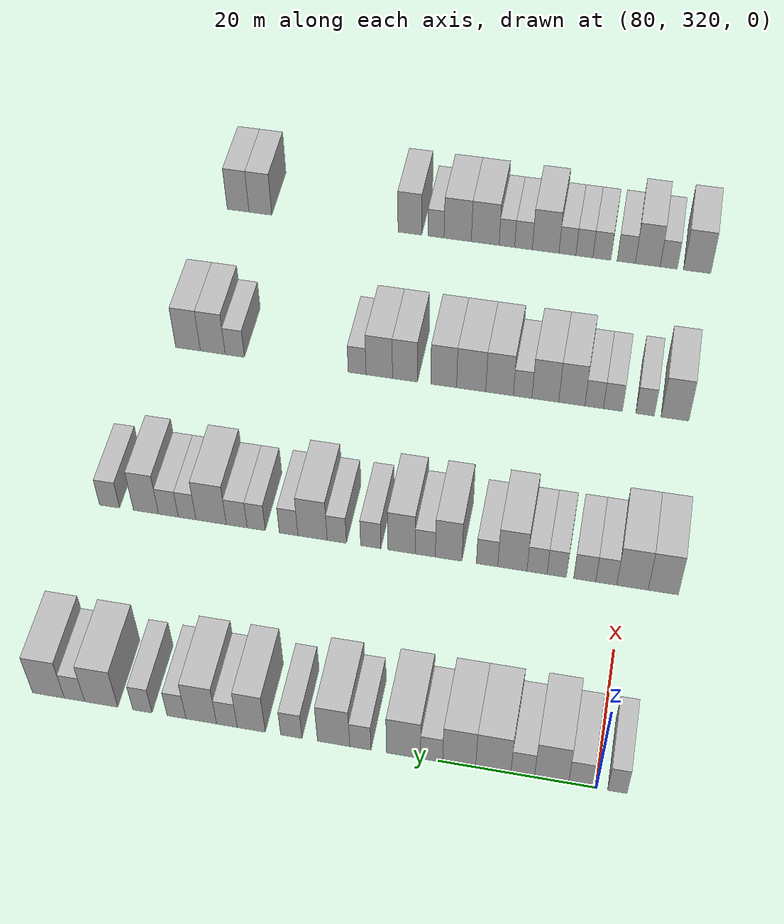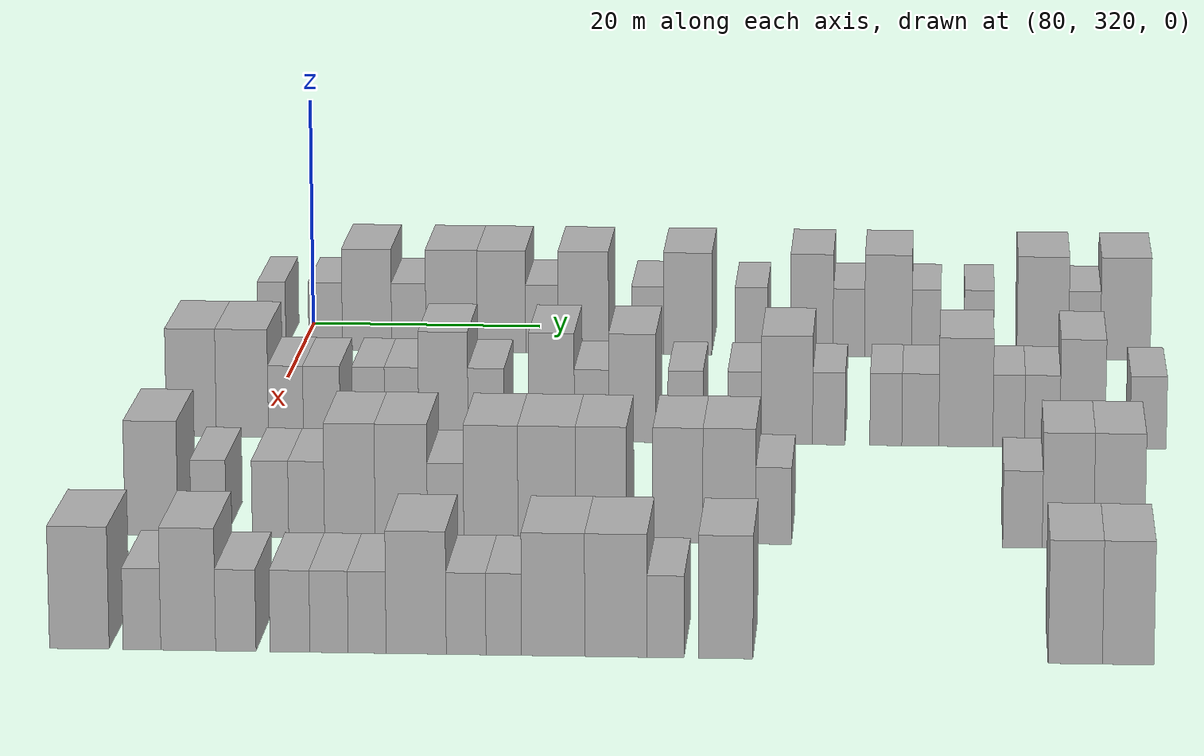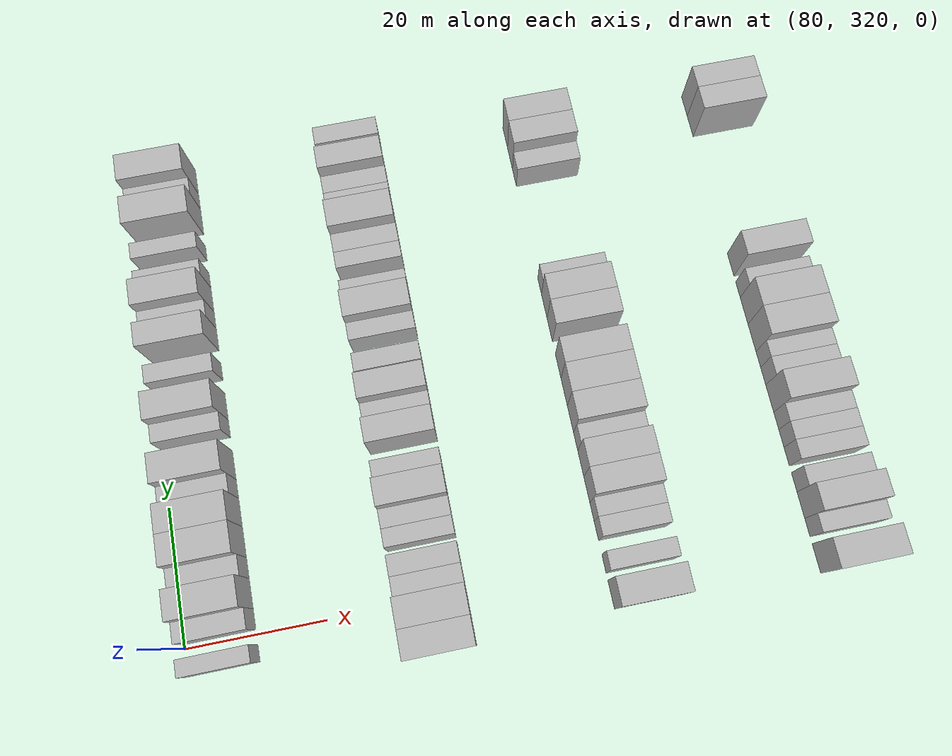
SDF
<sdf version="1.6">
 <world name="default">
  <model name="building_657">
   <static>1</static>
   <pose>85.0000 317.4570 0 0.000000 0.000000 0.000000</pose>
   <link name="link">
    <pose>0 0 3.00 0 0 0</pose>
    <collision name="collision"><geometry><box><size>10.0000 2.4026 6.0000</size></box></geometry></collision>
    <visual name="visual">
     <cast_shadows>0</cast_shadows>
     <geometry><box><size>10.0000 2.4026 6.0000</size></box></geometry>
     <material>
      <script>
       <uri>model://HANNAS_wall/materials/scripts</uri>
       <uri>model://HANNAS_wall/materials/textures</uri>
       <name>vrc/HANNAS_wall</name>
      </script>
     </material>
    </visual>
   </link>
  </model>
  <model name="building_658">
   <static>1</static>
   <pose>85.0000 322.1167 0 0.000000 0.000000 0.000000</pose>
   <link name="link">
    <pose>0 0 3.00 0 0 0</pose>
    <collision name="collision"><geometry><box><size>10.0000 2.9169 6.0000</size></box></geometry></collision>
    <visual name="visual">
     <cast_shadows>0</cast_shadows>
     <geometry><box><size>10.0000 2.9169 6.0000</size></box></geometry>
     <material>
      <script>
       <uri>model://HANNAS_wall/materials/scripts</uri>
       <uri>model://HANNAS_wall/materials/textures</uri>
       <name>vrc/HANNAS_wall</name>
      </script>
     </material>
    </visual>
   </link>
  </model>
  <model name="building_659">
   <static>1</static>
   <pose>85.0000 325.7129 0 0.000000 0.000000 0.000000</pose>
   <link name="link">
    <pose>0 0 4.50 0 0 0</pose>
    <collision name="collision"><geometry><box><size>10.0000 4.2755 9.0000</size></box></geometry></collision>
    <visual name="visual">
     <cast_shadows>0</cast_shadows>
     <geometry><box><size>10.0000 4.2755 9.0000</size></box></geometry>
     <material>
      <script>
       <uri>model://HANNAS_wall/materials/scripts</uri>
       <uri>model://HANNAS_wall/materials/textures</uri>
       <name>vrc/HANNAS_wall</name>
      </script>
     </material>
    </visual>
   </link>
  </model>
  <model name="building_660">
   <static>1</static>
   <pose>85.0000 329.3362 0 0.000000 0.000000 0.000000</pose>
   <link name="link">
    <pose>0 0 3.00 0 0 0</pose>
    <collision name="collision"><geometry><box><size>10.0000 2.9711 6.0000</size></box></geometry></collision>
    <visual name="visual">
     <cast_shadows>0</cast_shadows>
     <geometry><box><size>10.0000 2.9711 6.0000</size></box></geometry>
     <material>
      <script>
       <uri>model://HANNAS_wall/materials/scripts</uri>
       <uri>model://HANNAS_wall/materials/textures</uri>
       <name>vrc/HANNAS_wall</name>
      </script>
     </material>
    </visual>
   </link>
  </model>
  <model name="building_661">
   <static>1</static>
   <pose>85.0000 333.0468 0 0.000000 0.000000 0.000000</pose>
   <link name="link">
    <pose>0 0 4.50 0 0 0</pose>
    <collision name="collision"><geometry><box><size>10.0000 4.4502 9.0000</size></box></geometry></collision>
    <visual name="visual">
     <cast_shadows>0</cast_shadows>
     <geometry><box><size>10.0000 4.4502 9.0000</size></box></geometry>
     <material>
      <script>
       <uri>model://HANNAS_wall/materials/scripts</uri>
       <uri>model://HANNAS_wall/materials/textures</uri>
       <name>vrc/HANNAS_wall</name>
      </script>
     </material>
    </visual>
   </link>
  </model>
  <model name="building_662">
   <static>1</static>
   <pose>85.0000 337.3707 0 0.000000 0.000000 0.000000</pose>
   <link name="link">
    <pose>0 0 4.50 0 0 0</pose>
    <collision name="collision"><geometry><box><size>10.0000 4.1976 9.0000</size></box></geometry></collision>
    <visual name="visual">
     <cast_shadows>0</cast_shadows>
     <geometry><box><size>10.0000 4.1976 9.0000</size></box></geometry>
     <material>
      <script>
       <uri>model://HANNAS_wall/materials/scripts</uri>
       <uri>model://HANNAS_wall/materials/textures</uri>
       <name>vrc/HANNAS_wall</name>
      </script>
     </material>
    </visual>
   </link>
  </model>
  <model name="building_663">
   <static>1</static>
   <pose>85.0000 340.8778 0 0.000000 0.000000 0.000000</pose>
   <link name="link">
    <pose>0 0 3.00 0 0 0</pose>
    <collision name="collision"><geometry><box><size>10.0000 2.8165 6.0000</size></box></geometry></collision>
    <visual name="visual">
     <cast_shadows>0</cast_shadows>
     <geometry><box><size>10.0000 2.8165 6.0000</size></box></geometry>
     <material>
      <script>
       <uri>model://HANNAS_wall/materials/scripts</uri>
       <uri>model://HANNAS_wall/materials/textures</uri>
       <name>vrc/HANNAS_wall</name>
      </script>
     </material>
    </visual>
   </link>
  </model>
  <model name="building_664">
   <static>1</static>
   <pose>85.0000 344.4559 0 0.000000 0.000000 0.000000</pose>
   <link name="link">
    <pose>0 0 4.50 0 0 0</pose>
    <collision name="collision"><geometry><box><size>10.0000 4.3398 9.0000</size></box></geometry></collision>
    <visual name="visual">
     <cast_shadows>0</cast_shadows>
     <geometry><box><size>10.0000 4.3398 9.0000</size></box></geometry>
     <material>
      <script>
       <uri>model://HANNAS_wall/materials/scripts</uri>
       <uri>model://HANNAS_wall/materials/textures</uri>
       <name>vrc/HANNAS_wall</name>
      </script>
     </material>
    </visual>
   </link>
  </model>
  <model name="building_665">
   <static>1</static>
   <pose>85.0000 349.9977 0 0.000000 0.000000 0.000000</pose>
   <link name="link">
    <pose>0 0 3.00 0 0 0</pose>
    <collision name="collision"><geometry><box><size>10.0000 2.7438 6.0000</size></box></geometry></collision>
    <visual name="visual">
     <cast_shadows>0</cast_shadows>
     <geometry><box><size>10.0000 2.7438 6.0000</size></box></geometry>
     <material>
      <script>
       <uri>model://HANNAS_wall/materials/scripts</uri>
       <uri>model://HANNAS_wall/materials/textures</uri>
       <name>vrc/HANNAS_wall</name>
      </script>
     </material>
    </visual>
   </link>
  </model>
  <model name="building_666">
   <static>1</static>
   <pose>85.0000 353.4568 0 0.000000 0.000000 0.000000</pose>
   <link name="link">
    <pose>0 0 4.50 0 0 0</pose>
    <collision name="collision"><geometry><box><size>10.0000 4.1745 9.0000</size></box></geometry></collision>
    <visual name="visual">
     <cast_shadows>0</cast_shadows>
     <geometry><box><size>10.0000 4.1745 9.0000</size></box></geometry>
     <material>
      <script>
       <uri>model://HANNAS_wall/materials/scripts</uri>
       <uri>model://HANNAS_wall/materials/textures</uri>
       <name>vrc/HANNAS_wall</name>
      </script>
     </material>
    </visual>
   </link>
  </model>
  <model name="building_667">
   <static>1</static>
   <pose>85.0000 358.9372 0 0.000000 0.000000 0.000000</pose>
   <link name="link">
    <pose>0 0 3.00 0 0 0</pose>
    <collision name="collision"><geometry><box><size>10.0000 2.7862 6.0000</size></box></geometry></collision>
    <visual name="visual">
     <cast_shadows>0</cast_shadows>
     <geometry><box><size>10.0000 2.7862 6.0000</size></box></geometry>
     <material>
      <script>
       <uri>model://HANNAS_wall/materials/scripts</uri>
       <uri>model://HANNAS_wall/materials/textures</uri>
       <name>vrc/HANNAS_wall</name>
      </script>
     </material>
    </visual>
   </link>
  </model>
  <model name="building_668">
   <static>1</static>
   <pose>85.0000 364.1641 0 0.000000 0.000000 0.000000</pose>
   <link name="link">
    <pose>0 0 4.50 0 0 0</pose>
    <collision name="collision"><geometry><box><size>10.0000 3.6677 9.0000</size></box></geometry></collision>
    <visual name="visual">
     <cast_shadows>0</cast_shadows>
     <geometry><box><size>10.0000 3.6677 9.0000</size></box></geometry>
     <material>
      <script>
       <uri>model://HANNAS_wall/materials/scripts</uri>
       <uri>model://HANNAS_wall/materials/textures</uri>
       <name>vrc/HANNAS_wall</name>
      </script>
     </material>
    </visual>
   </link>
  </model>
  <model name="building_669">
   <static>1</static>
   <pose>85.0000 367.3569 0 0.000000 0.000000 0.000000</pose>
   <link name="link">
    <pose>0 0 3.00 0 0 0</pose>
    <collision name="collision"><geometry><box><size>10.0000 2.7177 6.0000</size></box></geometry></collision>
    <visual name="visual">
     <cast_shadows>0</cast_shadows>
     <geometry><box><size>10.0000 2.7177 6.0000</size></box></geometry>
     <material>
      <script>
       <uri>model://HANNAS_wall/materials/scripts</uri>
       <uri>model://HANNAS_wall/materials/textures</uri>
       <name>vrc/HANNAS_wall</name>
      </script>
     </material>
    </visual>
   </link>
  </model>
  <model name="building_670">
   <static>1</static>
   <pose>85.0000 370.7397 0 0.000000 0.000000 0.000000</pose>
   <link name="link">
    <pose>0 0 4.50 0 0 0</pose>
    <collision name="collision"><geometry><box><size>10.0000 4.0479 9.0000</size></box></geometry></collision>
    <visual name="visual">
     <cast_shadows>0</cast_shadows>
     <geometry><box><size>10.0000 4.0479 9.0000</size></box></geometry>
     <material>
      <script>
       <uri>model://HANNAS_wall/materials/scripts</uri>
       <uri>model://HANNAS_wall/materials/textures</uri>
       <name>vrc/HANNAS_wall</name>
      </script>
     </material>
    </visual>
   </link>
  </model>
  <model name="building_671">
   <static>1</static>
   <pose>85.0000 374.0092 0 0.000000 0.000000 0.000000</pose>
   <link name="link">
    <pose>0 0 3.00 0 0 0</pose>
    <collision name="collision"><geometry><box><size>10.0000 2.4912 6.0000</size></box></geometry></collision>
    <visual name="visual">
     <cast_shadows>0</cast_shadows>
     <geometry><box><size>10.0000 2.4912 6.0000</size></box></geometry>
     <material>
      <script>
       <uri>model://HANNAS_wall/materials/scripts</uri>
       <uri>model://HANNAS_wall/materials/textures</uri>
       <name>vrc/HANNAS_wall</name>
      </script>
     </material>
    </visual>
   </link>
  </model>
  <model name="building_672">
   <static>1</static>
   <pose>85.0000 378.5277 0 0.000000 0.000000 0.000000</pose>
   <link name="link">
    <pose>0 0 3.00 0 0 0</pose>
    <collision name="collision"><geometry><box><size>10.0000 2.5457 6.0000</size></box></geometry></collision>
    <visual name="visual">
     <cast_shadows>0</cast_shadows>
     <geometry><box><size>10.0000 2.5457 6.0000</size></box></geometry>
     <material>
      <script>
       <uri>model://HANNAS_wall/materials/scripts</uri>
       <uri>model://HANNAS_wall/materials/textures</uri>
       <name>vrc/HANNAS_wall</name>
      </script>
     </material>
    </visual>
   </link>
  </model>
  <model name="building_673">
   <static>1</static>
   <pose>85.0000 384.0143 0 0.000000 0.000000 0.000000</pose>
   <link name="link">
    <pose>0 0 4.50 0 0 0</pose>
    <collision name="collision"><geometry><box><size>10.0000 4.4275 9.0000</size></box></geometry></collision>
    <visual name="visual">
     <cast_shadows>0</cast_shadows>
     <geometry><box><size>10.0000 4.4275 9.0000</size></box></geometry>
     <material>
      <script>
       <uri>model://HANNAS_wall/materials/scripts</uri>
       <uri>model://HANNAS_wall/materials/textures</uri>
       <name>vrc/HANNAS_wall</name>
      </script>
     </material>
    </visual>
   </link>
  </model>
  <model name="building_674">
   <static>1</static>
   <pose>85.0000 387.5916 0 0.000000 0.000000 0.000000</pose>
   <link name="link">
    <pose>0 0 3.00 0 0 0</pose>
    <collision name="collision"><geometry><box><size>10.0000 2.7272 6.0000</size></box></geometry></collision>
    <visual name="visual">
     <cast_shadows>0</cast_shadows>
     <geometry><box><size>10.0000 2.7272 6.0000</size></box></geometry>
     <material>
      <script>
       <uri>model://HANNAS_wall/materials/scripts</uri>
       <uri>model://HANNAS_wall/materials/textures</uri>
       <name>vrc/HANNAS_wall</name>
      </script>
     </material>
    </visual>
   </link>
  </model>
  <model name="building_675">
   <static>1</static>
   <pose>85.0000 391.0975 0 0.000000 0.000000 0.000000</pose>
   <link name="link">
    <pose>0 0 4.50 0 0 0</pose>
    <collision name="collision"><geometry><box><size>10.0000 4.2845 9.0000</size></box></geometry></collision>
    <visual name="visual">
     <cast_shadows>0</cast_shadows>
     <geometry><box><size>10.0000 4.2845 9.0000</size></box></geometry>
     <material>
      <script>
       <uri>model://HANNAS_wall/materials/scripts</uri>
       <uri>model://HANNAS_wall/materials/textures</uri>
       <name>vrc/HANNAS_wall</name>
      </script>
     </material>
    </visual>
   </link>
  </model>
  <model name="building_880">
   <static>1</static>
   <pose>115.0000 314.4201 0 0.000000 0.000000 0.000000</pose>
   <link name="link">
    <pose>0 0 4.50 0 0 0</pose>
    <collision name="collision"><geometry><box><size>10.0000 4.0799 9.0000</size></box></geometry></collision>
    <visual name="visual">
     <cast_shadows>0</cast_shadows>
     <geometry><box><size>10.0000 4.0799 9.0000</size></box></geometry>
     <material>
      <script>
       <uri>model://HANNAS_wall/materials/scripts</uri>
       <uri>model://HANNAS_wall/materials/textures</uri>
       <name>vrc/HANNAS_wall</name>
      </script>
     </material>
    </visual>
   </link>
  </model>
  <model name="building_881">
   <static>1</static>
   <pose>115.0000 318.5899 0 0.000000 0.000000 0.000000</pose>
   <link name="link">
    <pose>0 0 4.50 0 0 0</pose>
    <collision name="collision"><geometry><box><size>10.0000 4.2597 9.0000</size></box></geometry></collision>
    <visual name="visual">
     <cast_shadows>0</cast_shadows>
     <geometry><box><size>10.0000 4.2597 9.0000</size></box></geometry>
     <material>
      <script>
       <uri>model://HANNAS_wall/materials/scripts</uri>
       <uri>model://HANNAS_wall/materials/textures</uri>
       <name>vrc/HANNAS_wall</name>
      </script>
     </material>
    </visual>
   </link>
  </model>
  <model name="building_882">
   <static>1</static>
   <pose>115.0000 322.1498 0 0.000000 0.000000 0.000000</pose>
   <link name="link">
    <pose>0 0 3.00 0 0 0</pose>
    <collision name="collision"><geometry><box><size>10.0000 2.8601 6.0000</size></box></geometry></collision>
    <visual name="visual">
     <cast_shadows>0</cast_shadows>
     <geometry><box><size>10.0000 2.8601 6.0000</size></box></geometry>
     <material>
      <script>
       <uri>model://HANNAS_wall/materials/scripts</uri>
       <uri>model://HANNAS_wall/materials/textures</uri>
       <name>vrc/HANNAS_wall</name>
      </script>
     </material>
    </visual>
   </link>
  </model>
  <model name="building_883">
   <static>1</static>
   <pose>115.0000 325.0797 0 0.000000 0.000000 0.000000</pose>
   <link name="link">
    <pose>0 0 3.00 0 0 0</pose>
    <collision name="collision"><geometry><box><size>10.0000 2.9998 6.0000</size></box></geometry></collision>
    <visual name="visual">
     <cast_shadows>0</cast_shadows>
     <geometry><box><size>10.0000 2.9998 6.0000</size></box></geometry>
     <material>
      <script>
       <uri>model://HANNAS_wall/materials/scripts</uri>
       <uri>model://HANNAS_wall/materials/textures</uri>
       <name>vrc/HANNAS_wall</name>
      </script>
     </material>
    </visual>
   </link>
  </model>
  <model name="building_884">
   <static>1</static>
   <pose>115.0000 328.9000 0 0.000000 0.000000 0.000000</pose>
   <link name="link">
    <pose>0 0 3.00 0 0 0</pose>
    <collision name="collision"><geometry><box><size>10.0000 2.6408 6.0000</size></box></geometry></collision>
    <visual name="visual">
     <cast_shadows>0</cast_shadows>
     <geometry><box><size>10.0000 2.6408 6.0000</size></box></geometry>
     <material>
      <script>
       <uri>model://HANNAS_wall/materials/scripts</uri>
       <uri>model://HANNAS_wall/materials/textures</uri>
       <name>vrc/HANNAS_wall</name>
      </script>
     </material>
    </visual>
   </link>
  </model>
  <model name="building_885">
   <static>1</static>
   <pose>115.0000 331.6033 0 0.000000 0.000000 0.000000</pose>
   <link name="link">
    <pose>0 0 3.00 0 0 0</pose>
    <collision name="collision"><geometry><box><size>10.0000 2.7657 6.0000</size></box></geometry></collision>
    <visual name="visual">
     <cast_shadows>0</cast_shadows>
     <geometry><box><size>10.0000 2.7657 6.0000</size></box></geometry>
     <material>
      <script>
       <uri>model://HANNAS_wall/materials/scripts</uri>
       <uri>model://HANNAS_wall/materials/textures</uri>
       <name>vrc/HANNAS_wall</name>
      </script>
     </material>
    </visual>
   </link>
  </model>
  <model name="building_886">
   <static>1</static>
   <pose>115.0000 334.9949 0 0.000000 0.000000 0.000000</pose>
   <link name="link">
    <pose>0 0 4.50 0 0 0</pose>
    <collision name="collision"><geometry><box><size>10.0000 4.0175 9.0000</size></box></geometry></collision>
    <visual name="visual">
     <cast_shadows>0</cast_shadows>
     <geometry><box><size>10.0000 4.0175 9.0000</size></box></geometry>
     <material>
      <script>
       <uri>model://HANNAS_wall/materials/scripts</uri>
       <uri>model://HANNAS_wall/materials/textures</uri>
       <name>vrc/HANNAS_wall</name>
      </script>
     </material>
    </visual>
   </link>
  </model>
  <model name="building_887">
   <static>1</static>
   <pose>115.0000 338.4802 0 0.000000 0.000000 0.000000</pose>
   <link name="link">
    <pose>0 0 3.00 0 0 0</pose>
    <collision name="collision"><geometry><box><size>10.0000 2.9532 6.0000</size></box></geometry></collision>
    <visual name="visual">
     <cast_shadows>0</cast_shadows>
     <geometry><box><size>10.0000 2.9532 6.0000</size></box></geometry>
     <material>
      <script>
       <uri>model://HANNAS_wall/materials/scripts</uri>
       <uri>model://HANNAS_wall/materials/textures</uri>
       <name>vrc/HANNAS_wall</name>
      </script>
     </material>
    </visual>
   </link>
  </model>
  <model name="building_888">
   <static>1</static>
   <pose>115.0000 343.8060 0 0.000000 0.000000 0.000000</pose>
   <link name="link">
    <pose>0 0 4.50 0 0 0</pose>
    <collision name="collision"><geometry><box><size>10.0000 3.6983 9.0000</size></box></geometry></collision>
    <visual name="visual">
     <cast_shadows>0</cast_shadows>
     <geometry><box><size>10.0000 3.6983 9.0000</size></box></geometry>
     <material>
      <script>
       <uri>model://HANNAS_wall/materials/scripts</uri>
       <uri>model://HANNAS_wall/materials/textures</uri>
       <name>vrc/HANNAS_wall</name>
      </script>
     </material>
    </visual>
   </link>
  </model>
  <model name="building_889">
   <static>1</static>
   <pose>115.0000 347.0456 0 0.000000 0.000000 0.000000</pose>
   <link name="link">
    <pose>0 0 3.00 0 0 0</pose>
    <collision name="collision"><geometry><box><size>10.0000 2.7809 6.0000</size></box></geometry></collision>
    <visual name="visual">
     <cast_shadows>0</cast_shadows>
     <geometry><box><size>10.0000 2.7809 6.0000</size></box></geometry>
     <material>
      <script>
       <uri>model://HANNAS_wall/materials/scripts</uri>
       <uri>model://HANNAS_wall/materials/textures</uri>
       <name>vrc/HANNAS_wall</name>
      </script>
     </material>
    </visual>
   </link>
  </model>
  <model name="building_890">
   <static>1</static>
   <pose>115.0000 350.3469 0 0.000000 0.000000 0.000000</pose>
   <link name="link">
    <pose>0 0 4.50 0 0 0</pose>
    <collision name="collision"><geometry><box><size>10.0000 3.8218 9.0000</size></box></geometry></collision>
    <visual name="visual">
     <cast_shadows>0</cast_shadows>
     <geometry><box><size>10.0000 3.8218 9.0000</size></box></geometry>
     <material>
      <script>
       <uri>model://HANNAS_wall/materials/scripts</uri>
       <uri>model://HANNAS_wall/materials/textures</uri>
       <name>vrc/HANNAS_wall</name>
      </script>
     </material>
    </visual>
   </link>
  </model>
  <model name="building_891">
   <static>1</static>
   <pose>115.0000 354.6791 0 0.000000 0.000000 0.000000</pose>
   <link name="link">
    <pose>0 0 3.00 0 0 0</pose>
    <collision name="collision"><geometry><box><size>10.0000 2.8425 6.0000</size></box></geometry></collision>
    <visual name="visual">
     <cast_shadows>0</cast_shadows>
     <geometry><box><size>10.0000 2.8425 6.0000</size></box></geometry>
     <material>
      <script>
       <uri>model://HANNAS_wall/materials/scripts</uri>
       <uri>model://HANNAS_wall/materials/textures</uri>
       <name>vrc/HANNAS_wall</name>
      </script>
     </material>
    </visual>
   </link>
  </model>
  <model name="building_892">
   <static>1</static>
   <pose>115.0000 359.4620 0 0.000000 0.000000 0.000000</pose>
   <link name="link">
    <pose>0 0 3.00 0 0 0</pose>
    <collision name="collision"><geometry><box><size>10.0000 2.7233 6.0000</size></box></geometry></collision>
    <visual name="visual">
     <cast_shadows>0</cast_shadows>
     <geometry><box><size>10.0000 2.7233 6.0000</size></box></geometry>
     <material>
      <script>
       <uri>model://HANNAS_wall/materials/scripts</uri>
       <uri>model://HANNAS_wall/materials/textures</uri>
       <name>vrc/HANNAS_wall</name>
      </script>
     </material>
    </visual>
   </link>
  </model>
  <model name="building_893">
   <static>1</static>
   <pose>115.0000 362.8983 0 0.000000 0.000000 0.000000</pose>
   <link name="link">
    <pose>0 0 4.50 0 0 0</pose>
    <collision name="collision"><geometry><box><size>10.0000 4.1493 9.0000</size></box></geometry></collision>
    <visual name="visual">
     <cast_shadows>0</cast_shadows>
     <geometry><box><size>10.0000 4.1493 9.0000</size></box></geometry>
     <material>
      <script>
       <uri>model://HANNAS_wall/materials/scripts</uri>
       <uri>model://HANNAS_wall/materials/textures</uri>
       <name>vrc/HANNAS_wall</name>
      </script>
     </material>
    </visual>
   </link>
  </model>
  <model name="building_894">
   <static>1</static>
   <pose>115.0000 366.2913 0 0.000000 0.000000 0.000000</pose>
   <link name="link">
    <pose>0 0 3.00 0 0 0</pose>
    <collision name="collision"><geometry><box><size>10.0000 2.6367 6.0000</size></box></geometry></collision>
    <visual name="visual">
     <cast_shadows>0</cast_shadows>
     <geometry><box><size>10.0000 2.6367 6.0000</size></box></geometry>
     <material>
      <script>
       <uri>model://HANNAS_wall/materials/scripts</uri>
       <uri>model://HANNAS_wall/materials/textures</uri>
       <name>vrc/HANNAS_wall</name>
      </script>
     </material>
    </visual>
   </link>
  </model>
  <model name="building_895">
   <static>1</static>
   <pose>115.0000 370.9035 0 0.000000 0.000000 0.000000</pose>
   <link name="link">
    <pose>0 0 3.00 0 0 0</pose>
    <collision name="collision"><geometry><box><size>10.0000 2.5877 6.0000</size></box></geometry></collision>
    <visual name="visual">
     <cast_shadows>0</cast_shadows>
     <geometry><box><size>10.0000 2.5877 6.0000</size></box></geometry>
     <material>
      <script>
       <uri>model://HANNAS_wall/materials/scripts</uri>
       <uri>model://HANNAS_wall/materials/textures</uri>
       <name>vrc/HANNAS_wall</name>
      </script>
     </material>
    </visual>
   </link>
  </model>
  <model name="building_896">
   <static>1</static>
   <pose>115.0000 373.6874 0 0.000000 0.000000 0.000000</pose>
   <link name="link">
    <pose>0 0 3.00 0 0 0</pose>
    <collision name="collision"><geometry><box><size>10.0000 2.9801 6.0000</size></box></geometry></collision>
    <visual name="visual">
     <cast_shadows>0</cast_shadows>
     <geometry><box><size>10.0000 2.9801 6.0000</size></box></geometry>
     <material>
      <script>
       <uri>model://HANNAS_wall/materials/scripts</uri>
       <uri>model://HANNAS_wall/materials/textures</uri>
       <name>vrc/HANNAS_wall</name>
      </script>
     </material>
    </visual>
   </link>
  </model>
  <model name="building_897">
   <static>1</static>
   <pose>115.0000 377.3620 0 0.000000 0.000000 0.000000</pose>
   <link name="link">
    <pose>0 0 4.50 0 0 0</pose>
    <collision name="collision"><geometry><box><size>10.0000 4.3691 9.0000</size></box></geometry></collision>
    <visual name="visual">
     <cast_shadows>0</cast_shadows>
     <geometry><box><size>10.0000 4.3691 9.0000</size></box></geometry>
     <material>
      <script>
       <uri>model://HANNAS_wall/materials/scripts</uri>
       <uri>model://HANNAS_wall/materials/textures</uri>
       <name>vrc/HANNAS_wall</name>
      </script>
     </material>
    </visual>
   </link>
  </model>
  <model name="building_898">
   <static>1</static>
   <pose>115.0000 380.8211 0 0.000000 0.000000 0.000000</pose>
   <link name="link">
    <pose>0 0 3.00 0 0 0</pose>
    <collision name="collision"><geometry><box><size>10.0000 2.5493 6.0000</size></box></geometry></collision>
    <visual name="visual">
     <cast_shadows>0</cast_shadows>
     <geometry><box><size>10.0000 2.5493 6.0000</size></box></geometry>
     <material>
      <script>
       <uri>model://HANNAS_wall/materials/scripts</uri>
       <uri>model://HANNAS_wall/materials/textures</uri>
       <name>vrc/HANNAS_wall</name>
      </script>
     </material>
    </visual>
   </link>
  </model>
  <model name="building_899">
   <static>1</static>
   <pose>115.0000 383.5195 0 0.000000 0.000000 0.000000</pose>
   <link name="link">
    <pose>0 0 3.00 0 0 0</pose>
    <collision name="collision"><geometry><box><size>10.0000 2.8475 6.0000</size></box></geometry></collision>
    <visual name="visual">
     <cast_shadows>0</cast_shadows>
     <geometry><box><size>10.0000 2.8475 6.0000</size></box></geometry>
     <material>
      <script>
       <uri>model://HANNAS_wall/materials/scripts</uri>
       <uri>model://HANNAS_wall/materials/textures</uri>
       <name>vrc/HANNAS_wall</name>
      </script>
     </material>
    </visual>
   </link>
  </model>
  <model name="building_900">
   <static>1</static>
   <pose>115.0000 386.7695 0 0.000000 0.000000 0.000000</pose>
   <link name="link">
    <pose>0 0 4.50 0 0 0</pose>
    <collision name="collision"><geometry><box><size>10.0000 3.6524 9.0000</size></box></geometry></collision>
    <visual name="visual">
     <cast_shadows>0</cast_shadows>
     <geometry><box><size>10.0000 3.6524 9.0000</size></box></geometry>
     <material>
      <script>
       <uri>model://HANNAS_wall/materials/scripts</uri>
       <uri>model://HANNAS_wall/materials/textures</uri>
       <name>vrc/HANNAS_wall</name>
      </script>
     </material>
    </visual>
   </link>
  </model>
  <model name="building_901">
   <static>1</static>
   <pose>115.0000 392.0570 0 0.000000 0.000000 0.000000</pose>
   <link name="link">
    <pose>0 0 3.00 0 0 0</pose>
    <collision name="collision"><geometry><box><size>10.0000 2.9227 6.0000</size></box></geometry></collision>
    <visual name="visual">
     <cast_shadows>0</cast_shadows>
     <geometry><box><size>10.0000 2.9227 6.0000</size></box></geometry>
     <material>
      <script>
       <uri>model://HANNAS_wall/materials/scripts</uri>
       <uri>model://HANNAS_wall/materials/textures</uri>
       <name>vrc/HANNAS_wall</name>
      </script>
     </material>
    </visual>
   </link>
  </model>
  <model name="building_1111">
   <static>1</static>
   <pose>145.0000 315.3507 0 0.000000 0.000000 0.000000</pose>
   <link name="link">
    <pose>0 0 4.50 0 0 0</pose>
    <collision name="collision"><geometry><box><size>10.0000 4.0513 9.0000</size></box></geometry></collision>
    <visual name="visual">
     <cast_shadows>0</cast_shadows>
     <geometry><box><size>10.0000 4.0513 9.0000</size></box></geometry>
     <material>
      <script>
       <uri>model://HANNAS_wall/materials/scripts</uri>
       <uri>model://HANNAS_wall/materials/textures</uri>
       <name>vrc/HANNAS_wall</name>
      </script>
     </material>
    </visual>
   </link>
  </model>
  <model name="building_1112">
   <static>1</static>
   <pose>145.0000 319.7225 0 0.000000 0.000000 0.000000</pose>
   <link name="link">
    <pose>0 0 3.00 0 0 0</pose>
    <collision name="collision"><geometry><box><size>10.0000 2.6924 6.0000</size></box></geometry></collision>
    <visual name="visual">
     <cast_shadows>0</cast_shadows>
     <geometry><box><size>10.0000 2.6924 6.0000</size></box></geometry>
     <material>
      <script>
       <uri>model://HANNAS_wall/materials/scripts</uri>
       <uri>model://HANNAS_wall/materials/textures</uri>
       <name>vrc/HANNAS_wall</name>
      </script>
     </material>
    </visual>
   </link>
  </model>
  <model name="building_1113">
   <static>1</static>
   <pose>145.0000 324.4578 0 0.000000 0.000000 0.000000</pose>
   <link name="link">
    <pose>0 0 3.00 0 0 0</pose>
    <collision name="collision"><geometry><box><size>10.0000 2.7781 6.0000</size></box></geometry></collision>
    <visual name="visual">
     <cast_shadows>0</cast_shadows>
     <geometry><box><size>10.0000 2.7781 6.0000</size></box></geometry>
     <material>
      <script>
       <uri>model://HANNAS_wall/materials/scripts</uri>
       <uri>model://HANNAS_wall/materials/textures</uri>
       <name>vrc/HANNAS_wall</name>
      </script>
     </material>
    </visual>
   </link>
  </model>
  <model name="building_1114">
   <static>1</static>
   <pose>145.0000 327.2168 0 0.000000 0.000000 0.000000</pose>
   <link name="link">
    <pose>0 0 3.00 0 0 0</pose>
    <collision name="collision"><geometry><box><size>10.0000 2.7400 6.0000</size></box></geometry></collision>
    <visual name="visual">
     <cast_shadows>0</cast_shadows>
     <geometry><box><size>10.0000 2.7400 6.0000</size></box></geometry>
     <material>
      <script>
       <uri>model://HANNAS_wall/materials/scripts</uri>
       <uri>model://HANNAS_wall/materials/textures</uri>
       <name>vrc/HANNAS_wall</name>
      </script>
     </material>
    </visual>
   </link>
  </model>
  <model name="building_1115">
   <static>1</static>
   <pose>145.0000 330.5218 0 0.000000 0.000000 0.000000</pose>
   <link name="link">
    <pose>0 0 4.50 0 0 0</pose>
    <collision name="collision"><geometry><box><size>10.0000 3.8699 9.0000</size></box></geometry></collision>
    <visual name="visual">
     <cast_shadows>0</cast_shadows>
     <geometry><box><size>10.0000 3.8699 9.0000</size></box></geometry>
     <material>
      <script>
       <uri>model://HANNAS_wall/materials/scripts</uri>
       <uri>model://HANNAS_wall/materials/textures</uri>
       <name>vrc/HANNAS_wall</name>
      </script>
     </material>
    </visual>
   </link>
  </model>
  <model name="building_1116">
   <static>1</static>
   <pose>145.0000 334.4503 0 0.000000 0.000000 0.000000</pose>
   <link name="link">
    <pose>0 0 4.50 0 0 0</pose>
    <collision name="collision"><geometry><box><size>10.0000 3.9871 9.0000</size></box></geometry></collision>
    <visual name="visual">
     <cast_shadows>0</cast_shadows>
     <geometry><box><size>10.0000 3.9871 9.0000</size></box></geometry>
     <material>
      <script>
       <uri>model://HANNAS_wall/materials/scripts</uri>
       <uri>model://HANNAS_wall/materials/textures</uri>
       <name>vrc/HANNAS_wall</name>
      </script>
     </material>
    </visual>
   </link>
  </model>
  <model name="building_1117">
   <static>1</static>
   <pose>145.0000 337.8297 0 0.000000 0.000000 0.000000</pose>
   <link name="link">
    <pose>0 0 3.00 0 0 0</pose>
    <collision name="collision"><geometry><box><size>10.0000 2.7717 6.0000</size></box></geometry></collision>
    <visual name="visual">
     <cast_shadows>0</cast_shadows>
     <geometry><box><size>10.0000 2.7717 6.0000</size></box></geometry>
     <material>
      <script>
       <uri>model://HANNAS_wall/materials/scripts</uri>
       <uri>model://HANNAS_wall/materials/textures</uri>
       <name>vrc/HANNAS_wall</name>
      </script>
     </material>
    </visual>
   </link>
  </model>
  <model name="building_1118">
   <static>1</static>
   <pose>145.0000 341.2808 0 0.000000 0.000000 0.000000</pose>
   <link name="link">
    <pose>0 0 4.50 0 0 0</pose>
    <collision name="collision"><geometry><box><size>10.0000 4.1305 9.0000</size></box></geometry></collision>
    <visual name="visual">
     <cast_shadows>0</cast_shadows>
     <geometry><box><size>10.0000 4.1305 9.0000</size></box></geometry>
     <material>
      <script>
       <uri>model://HANNAS_wall/materials/scripts</uri>
       <uri>model://HANNAS_wall/materials/textures</uri>
       <name>vrc/HANNAS_wall</name>
      </script>
     </material>
    </visual>
   </link>
  </model>
  <model name="building_1119">
   <static>1</static>
   <pose>145.0000 345.5330 0 0.000000 0.000000 0.000000</pose>
   <link name="link">
    <pose>0 0 4.50 0 0 0</pose>
    <collision name="collision"><geometry><box><size>10.0000 4.3739 9.0000</size></box></geometry></collision>
    <visual name="visual">
     <cast_shadows>0</cast_shadows>
     <geometry><box><size>10.0000 4.3739 9.0000</size></box></geometry>
     <material>
      <script>
       <uri>model://HANNAS_wall/materials/scripts</uri>
       <uri>model://HANNAS_wall/materials/textures</uri>
       <name>vrc/HANNAS_wall</name>
      </script>
     </material>
    </visual>
   </link>
  </model>
  <model name="building_1120">
   <static>1</static>
   <pose>145.0000 349.6608 0 0.000000 0.000000 0.000000</pose>
   <link name="link">
    <pose>0 0 4.50 0 0 0</pose>
    <collision name="collision"><geometry><box><size>10.0000 3.8817 9.0000</size></box></geometry></collision>
    <visual name="visual">
     <cast_shadows>0</cast_shadows>
     <geometry><box><size>10.0000 3.8817 9.0000</size></box></geometry>
     <material>
      <script>
       <uri>model://HANNAS_wall/materials/scripts</uri>
       <uri>model://HANNAS_wall/materials/textures</uri>
       <name>vrc/HANNAS_wall</name>
      </script>
     </material>
    </visual>
   </link>
  </model>
  <model name="building_1121">
   <static>1</static>
   <pose>145.0000 355.4987 0 0.000000 0.000000 0.000000</pose>
   <link name="link">
    <pose>0 0 4.50 0 0 0</pose>
    <collision name="collision"><geometry><box><size>10.0000 3.7939 9.0000</size></box></geometry></collision>
    <visual name="visual">
     <cast_shadows>0</cast_shadows>
     <geometry><box><size>10.0000 3.7939 9.0000</size></box></geometry>
     <material>
      <script>
       <uri>model://HANNAS_wall/materials/scripts</uri>
       <uri>model://HANNAS_wall/materials/textures</uri>
       <name>vrc/HANNAS_wall</name>
      </script>
     </material>
    </visual>
   </link>
  </model>
  <model name="building_1122">
   <static>1</static>
   <pose>145.0000 359.4034 0 0.000000 0.000000 0.000000</pose>
   <link name="link">
    <pose>0 0 4.50 0 0 0</pose>
    <collision name="collision"><geometry><box><size>10.0000 4.0155 9.0000</size></box></geometry></collision>
    <visual name="visual">
     <cast_shadows>0</cast_shadows>
     <geometry><box><size>10.0000 4.0155 9.0000</size></box></geometry>
     <material>
      <script>
       <uri>model://HANNAS_wall/materials/scripts</uri>
       <uri>model://HANNAS_wall/materials/textures</uri>
       <name>vrc/HANNAS_wall</name>
      </script>
     </material>
    </visual>
   </link>
  </model>
  <model name="building_1123">
   <static>1</static>
   <pose>145.0000 362.7677 0 0.000000 0.000000 0.000000</pose>
   <link name="link">
    <pose>0 0 3.00 0 0 0</pose>
    <collision name="collision"><geometry><box><size>10.0000 2.7132 6.0000</size></box></geometry></collision>
    <visual name="visual">
     <cast_shadows>0</cast_shadows>
     <geometry><box><size>10.0000 2.7132 6.0000</size></box></geometry>
     <material>
      <script>
       <uri>model://HANNAS_wall/materials/scripts</uri>
       <uri>model://HANNAS_wall/materials/textures</uri>
       <name>vrc/HANNAS_wall</name>
      </script>
     </material>
    </visual>
   </link>
  </model>
  <model name="building_1124">
   <static>1</static>
   <pose>145.0000 381.5930 0 0.000000 0.000000 0.000000</pose>
   <link name="link">
    <pose>0 0 3.00 0 0 0</pose>
    <collision name="collision"><geometry><box><size>10.0000 2.9791 6.0000</size></box></geometry></collision>
    <visual name="visual">
     <cast_shadows>0</cast_shadows>
     <geometry><box><size>10.0000 2.9791 6.0000</size></box></geometry>
     <material>
      <script>
       <uri>model://HANNAS_wall/materials/scripts</uri>
       <uri>model://HANNAS_wall/materials/textures</uri>
       <name>vrc/HANNAS_wall</name>
      </script>
     </material>
    </visual>
   </link>
  </model>
  <model name="building_1125">
   <static>1</static>
   <pose>145.0000 385.0182 0 0.000000 0.000000 0.000000</pose>
   <link name="link">
    <pose>0 0 4.50 0 0 0</pose>
    <collision name="collision"><geometry><box><size>10.0000 3.8713 9.0000</size></box></geometry></collision>
    <visual name="visual">
     <cast_shadows>0</cast_shadows>
     <geometry><box><size>10.0000 3.8713 9.0000</size></box></geometry>
     <material>
      <script>
       <uri>model://HANNAS_wall/materials/scripts</uri>
       <uri>model://HANNAS_wall/materials/textures</uri>
       <name>vrc/HANNAS_wall</name>
      </script>
     </material>
    </visual>
   </link>
  </model>
  <model name="building_1126">
   <static>1</static>
   <pose>145.0000 388.8796 0 0.000000 0.000000 0.000000</pose>
   <link name="link">
    <pose>0 0 4.50 0 0 0</pose>
    <collision name="collision"><geometry><box><size>10.0000 3.8515 9.0000</size></box></geometry></collision>
    <visual name="visual">
     <cast_shadows>0</cast_shadows>
     <geometry><box><size>10.0000 3.8515 9.0000</size></box></geometry>
     <material>
      <script>
       <uri>model://HANNAS_wall/materials/scripts</uri>
       <uri>model://HANNAS_wall/materials/textures</uri>
       <name>vrc/HANNAS_wall</name>
      </script>
     </material>
    </visual>
   </link>
  </model>
  <model name="building_1345">
   <static>1</static>
   <pose>175.0000 314.3744 0 0.000000 0.000000 0.000000</pose>
   <link name="link">
    <pose>0 0 4.50 0 0 0</pose>
    <collision name="collision"><geometry><box><size>10.0000 4.2628 9.0000</size></box></geometry></collision>
    <visual name="visual">
     <cast_shadows>0</cast_shadows>
     <geometry><box><size>10.0000 4.2628 9.0000</size></box></geometry>
     <material>
      <script>
       <uri>model://HANNAS_wall/materials/scripts</uri>
       <uri>model://HANNAS_wall/materials/textures</uri>
       <name>vrc/HANNAS_wall</name>
      </script>
     </material>
    </visual>
   </link>
  </model>
  <model name="building_1346">
   <static>1</static>
   <pose>175.0000 318.8515 0 0.000000 0.000000 0.000000</pose>
   <link name="link">
    <pose>0 0 3.00 0 0 0</pose>
    <collision name="collision"><geometry><box><size>10.0000 2.6914 6.0000</size></box></geometry></collision>
    <visual name="visual">
     <cast_shadows>0</cast_shadows>
     <geometry><box><size>10.0000 2.6914 6.0000</size></box></geometry>
     <material>
      <script>
       <uri>model://HANNAS_wall/materials/scripts</uri>
       <uri>model://HANNAS_wall/materials/textures</uri>
       <name>vrc/HANNAS_wall</name>
      </script>
     </material>
    </visual>
   </link>
  </model>
  <model name="building_1347">
   <static>1</static>
   <pose>175.0000 322.1539 0 0.000000 0.000000 0.000000</pose>
   <link name="link">
    <pose>0 0 4.50 0 0 0</pose>
    <collision name="collision"><geometry><box><size>10.0000 3.9133 9.0000</size></box></geometry></collision>
    <visual name="visual">
     <cast_shadows>0</cast_shadows>
     <geometry><box><size>10.0000 3.9133 9.0000</size></box></geometry>
     <material>
      <script>
       <uri>model://HANNAS_wall/materials/scripts</uri>
       <uri>model://HANNAS_wall/materials/textures</uri>
       <name>vrc/HANNAS_wall</name>
      </script>
     </material>
    </visual>
   </link>
  </model>
  <model name="building_1348">
   <static>1</static>
   <pose>175.0000 325.5508 0 0.000000 0.000000 0.000000</pose>
   <link name="link">
    <pose>0 0 3.00 0 0 0</pose>
    <collision name="collision"><geometry><box><size>10.0000 2.8807 6.0000</size></box></geometry></collision>
    <visual name="visual">
     <cast_shadows>0</cast_shadows>
     <geometry><box><size>10.0000 2.8807 6.0000</size></box></geometry>
     <material>
      <script>
       <uri>model://HANNAS_wall/materials/scripts</uri>
       <uri>model://HANNAS_wall/materials/textures</uri>
       <name>vrc/HANNAS_wall</name>
      </script>
     </material>
    </visual>
   </link>
  </model>
  <model name="building_1349">
   <static>1</static>
   <pose>175.0000 329.4121 0 0.000000 0.000000 0.000000</pose>
   <link name="link">
    <pose>0 0 3.00 0 0 0</pose>
    <collision name="collision"><geometry><box><size>10.0000 2.8418 6.0000</size></box></geometry></collision>
    <visual name="visual">
     <cast_shadows>0</cast_shadows>
     <geometry><box><size>10.0000 2.8418 6.0000</size></box></geometry>
     <material>
      <script>
       <uri>model://HANNAS_wall/materials/scripts</uri>
       <uri>model://HANNAS_wall/materials/textures</uri>
       <name>vrc/HANNAS_wall</name>
      </script>
     </material>
    </visual>
   </link>
  </model>
  <model name="building_1350">
   <static>1</static>
   <pose>175.0000 332.1935 0 0.000000 0.000000 0.000000</pose>
   <link name="link">
    <pose>0 0 3.00 0 0 0</pose>
    <collision name="collision"><geometry><box><size>10.0000 2.7211 6.0000</size></box></geometry></collision>
    <visual name="visual">
     <cast_shadows>0</cast_shadows>
     <geometry><box><size>10.0000 2.7211 6.0000</size></box></geometry>
     <material>
      <script>
       <uri>model://HANNAS_wall/materials/scripts</uri>
       <uri>model://HANNAS_wall/materials/textures</uri>
       <name>vrc/HANNAS_wall</name>
      </script>
     </material>
    </visual>
   </link>
  </model>
  <model name="building_1351">
   <static>1</static>
   <pose>175.0000 334.9035 0 0.000000 0.000000 0.000000</pose>
   <link name="link">
    <pose>0 0 3.00 0 0 0</pose>
    <collision name="collision"><geometry><box><size>10.0000 2.6988 6.0000</size></box></geometry></collision>
    <visual name="visual">
     <cast_shadows>0</cast_shadows>
     <geometry><box><size>10.0000 2.6988 6.0000</size></box></geometry>
     <material>
      <script>
       <uri>model://HANNAS_wall/materials/scripts</uri>
       <uri>model://HANNAS_wall/materials/textures</uri>
       <name>vrc/HANNAS_wall</name>
      </script>
     </material>
    </visual>
   </link>
  </model>
  <model name="building_1352">
   <static>1</static>
   <pose>175.0000 338.3886 0 0.000000 0.000000 0.000000</pose>
   <link name="link">
    <pose>0 0 4.50 0 0 0</pose>
    <collision name="collision"><geometry><box><size>10.0000 4.2715 9.0000</size></box></geometry></collision>
    <visual name="visual">
     <cast_shadows>0</cast_shadows>
     <geometry><box><size>10.0000 4.2715 9.0000</size></box></geometry>
     <material>
      <script>
       <uri>model://HANNAS_wall/materials/scripts</uri>
       <uri>model://HANNAS_wall/materials/textures</uri>
       <name>vrc/HANNAS_wall</name>
      </script>
     </material>
    </visual>
   </link>
  </model>
  <model name="building_1353">
   <static>1</static>
   <pose>175.0000 341.9359 0 0.000000 0.000000 0.000000</pose>
   <link name="link">
    <pose>0 0 3.00 0 0 0</pose>
    <collision name="collision"><geometry><box><size>10.0000 2.8231 6.0000</size></box></geometry></collision>
    <visual name="visual">
     <cast_shadows>0</cast_shadows>
     <geometry><box><size>10.0000 2.8231 6.0000</size></box></geometry>
     <material>
      <script>
       <uri>model://HANNAS_wall/materials/scripts</uri>
       <uri>model://HANNAS_wall/materials/textures</uri>
       <name>vrc/HANNAS_wall</name>
      </script>
     </material>
    </visual>
   </link>
  </model>
  <model name="building_1354">
   <static>1</static>
   <pose>175.0000 344.6080 0 0.000000 0.000000 0.000000</pose>
   <link name="link">
    <pose>0 0 3.00 0 0 0</pose>
    <collision name="collision"><geometry><box><size>10.0000 2.5209 6.0000</size></box></geometry></collision>
    <visual name="visual">
     <cast_shadows>0</cast_shadows>
     <geometry><box><size>10.0000 2.5209 6.0000</size></box></geometry>
     <material>
      <script>
       <uri>model://HANNAS_wall/materials/scripts</uri>
       <uri>model://HANNAS_wall/materials/textures</uri>
       <name>vrc/HANNAS_wall</name>
      </script>
     </material>
    </visual>
   </link>
  </model>
  <model name="building_1355">
   <static>1</static>
   <pose>175.0000 348.1093 0 0.000000 0.000000 0.000000</pose>
   <link name="link">
    <pose>0 0 4.50 0 0 0</pose>
    <collision name="collision"><geometry><box><size>10.0000 4.4817 9.0000</size></box></geometry></collision>
    <visual name="visual">
     <cast_shadows>0</cast_shadows>
     <geometry><box><size>10.0000 4.4817 9.0000</size></box></geometry>
     <material>
      <script>
       <uri>model://HANNAS_wall/materials/scripts</uri>
       <uri>model://HANNAS_wall/materials/textures</uri>
       <name>vrc/HANNAS_wall</name>
      </script>
     </material>
    </visual>
   </link>
  </model>
  <model name="building_1356">
   <static>1</static>
   <pose>175.0000 352.5562 0 0.000000 0.000000 0.000000</pose>
   <link name="link">
    <pose>0 0 4.50 0 0 0</pose>
    <collision name="collision"><geometry><box><size>10.0000 4.4121 9.0000</size></box></geometry></collision>
    <visual name="visual">
     <cast_shadows>0</cast_shadows>
     <geometry><box><size>10.0000 4.4121 9.0000</size></box></geometry>
     <material>
      <script>
       <uri>model://HANNAS_wall/materials/scripts</uri>
       <uri>model://HANNAS_wall/materials/textures</uri>
       <name>vrc/HANNAS_wall</name>
      </script>
     </material>
    </visual>
   </link>
  </model>
  <model name="building_1357">
   <static>1</static>
   <pose>175.0000 356.0737 0 0.000000 0.000000 0.000000</pose>
   <link name="link">
    <pose>0 0 3.00 0 0 0</pose>
    <collision name="collision"><geometry><box><size>10.0000 2.6229 6.0000</size></box></geometry></collision>
    <visual name="visual">
     <cast_shadows>0</cast_shadows>
     <geometry><box><size>10.0000 2.6229 6.0000</size></box></geometry>
     <material>
      <script>
       <uri>model://HANNAS_wall/materials/scripts</uri>
       <uri>model://HANNAS_wall/materials/textures</uri>
       <name>vrc/HANNAS_wall</name>
      </script>
     </material>
    </visual>
   </link>
  </model>
  <model name="building_1358">
   <static>1</static>
   <pose>175.0000 360.3179 0 0.000000 0.000000 0.000000</pose>
   <link name="link">
    <pose>0 0 4.50 0 0 0</pose>
    <collision name="collision"><geometry><box><size>10.0000 3.8655 9.0000</size></box></geometry></collision>
    <visual name="visual">
     <cast_shadows>0</cast_shadows>
     <geometry><box><size>10.0000 3.8655 9.0000</size></box></geometry>
     <material>
      <script>
       <uri>model://HANNAS_wall/materials/scripts</uri>
       <uri>model://HANNAS_wall/materials/textures</uri>
       <name>vrc/HANNAS_wall</name>
      </script>
     </material>
    </visual>
   </link>
  </model>
  <model name="building_1359">
   <static>1</static>
   <pose>175.0000 384.9596 0 0.000000 0.000000 0.000000</pose>
   <link name="link">
    <pose>0 0 4.50 0 0 0</pose>
    <collision name="collision"><geometry><box><size>10.0000 3.8060 9.0000</size></box></geometry></collision>
    <visual name="visual">
     <cast_shadows>0</cast_shadows>
     <geometry><box><size>10.0000 3.8060 9.0000</size></box></geometry>
     <material>
      <script>
       <uri>model://HANNAS_wall/materials/scripts</uri>
       <uri>model://HANNAS_wall/materials/textures</uri>
       <name>vrc/HANNAS_wall</name>
      </script>
     </material>
    </visual>
   </link>
  </model>
  <model name="building_1360">
   <static>1</static>
   <pose>175.0000 388.6725 0 0.000000 0.000000 0.000000</pose>
   <link name="link">
    <pose>0 0 4.50 0 0 0</pose>
    <collision name="collision"><geometry><box><size>10.0000 3.6198 9.0000</size></box></geometry></collision>
    <visual name="visual">
     <cast_shadows>0</cast_shadows>
     <geometry><box><size>10.0000 3.6198 9.0000</size></box></geometry>
     <material>
      <script>
       <uri>model://HANNAS_wall/materials/scripts</uri>
       <uri>model://HANNAS_wall/materials/textures</uri>
       <name>vrc/HANNAS_wall</name>
      </script>
     </material>
    </visual>
   </link>
  </model>
 </world>
</sdf>
